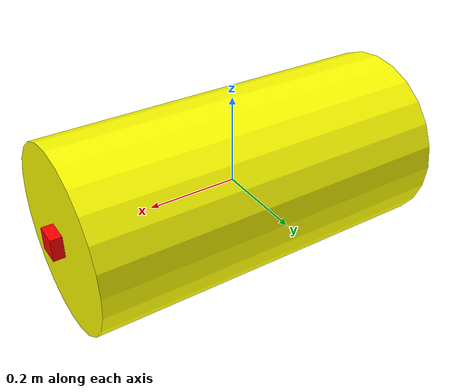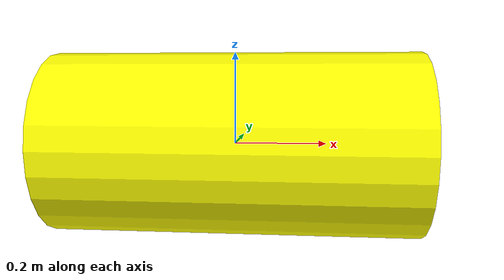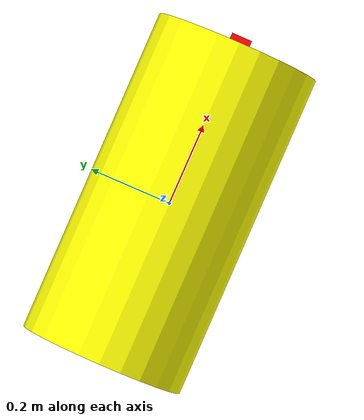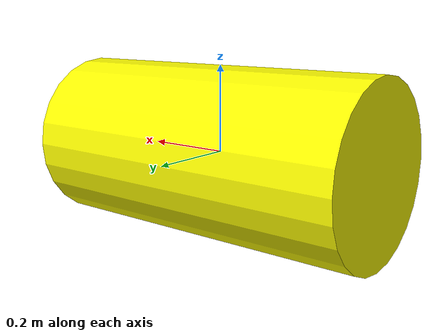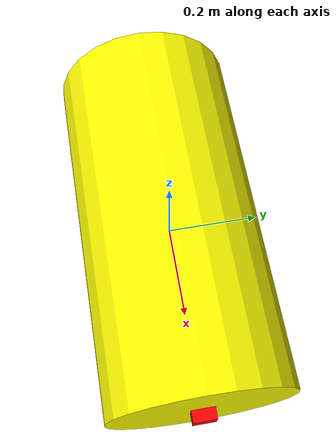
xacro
<?xml version="1.0"?>
<robot xmlns:xacro="http://www.ros.org/wiki/xacro" name="submarine">

    <xacro:include filename="$(find submarine_sim)/description/inertial.xacro"/>
    <xacro:include filename="$(find submarine_sim)/description/camera.xacro" />

    <xacro:property name="length" value="0.8" /> <xacro:property name="radius" value="0.2" /> <xacro:property name="mass" value="20" />

    <link name="base_link" />

    <link name="chassis">
        <visual>
            <geometry>
                <cylinder length="${length}" radius="${radius}" />
            </geometry>
            <origin rpy="0 1.5707 0" xyz="0 0 0"/>
            <material name="yellow">
                <color rgba="1 1 0 1"/>
            </material>
        </visual>

        <collision>
            <geometry>
                <cylinder length="${length}" radius="${radius}" />
            </geometry>
            <origin rpy="0 1.5707 0" xyz="0 0 0"/>
        </collision>

        <xacro:inertial mass="${mass}" x="${length}" y="${radius*2}" z="${radius*2}"/>
    </link>

    <joint name="base_link_chassis_joint" type="fixed">
        <parent link="base_link" />
        <child link="chassis" />
        <origin xyz="0 0 0" />
    </joint>

    <xacro:camera parent_link="chassis">
        <origin xyz="${length/2} 0 0" rpy="0 0 0"/>
    </xacro:camera>

    <gazebo>
        <plugin name="rov_controller" filename="librov_controller.so">
             <ros>
                <namespace>/rov</namespace>
             </ros>
        </plugin>
    </gazebo>

    <gazebo reference="chassis">
        <material>Gazebo/Yellow</material>
        <gravity>0</gravity>
    </gazebo>

</robot>

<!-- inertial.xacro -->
<robot xmlns:xacro="http://www.ros.org/wiki/xacro">

  <xacro:macro name="inertial" params="mass x y z">
    <inertial>
      <origin xyz="0 0 0" rpy="0 0 0"/>
      <mass value="${mass}" />
      <inertia
        ixx="${(1/12.0) * mass * (y*y + z*z)}" ixy="0.0" ixz="0.0"
        iyy="${(1/12.0) * mass * (x*x + z*z)}" iyz="0.0"
        izz="${(1/12.0) * mass * (x*x + y*y)}" />
    </inertial>
  </xacro:macro>

</robot>

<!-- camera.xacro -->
<robot xmlns:xacro="http://www.ros.org/wiki/xacro">

    <xacro:macro name="camera" params="parent_link *origin">

        <link name="camera_link">
            <visual>
                <geometry>
                    <box size="0.05 0.05 0.05" />
                </geometry>
                <material name="red">
                    <color rgba="1 0 0 1"/>
                </material>
            </visual>
            <collision>
                <geometry>
                    <box size="0.05 0.05 0.05" />
                </geometry>
            </collision>
            <inertial>
                <mass value="0.1" />
                <inertia ixx="0.0001" ixy="0" ixz="0" iyy="0.0001" iyz="0" izz="0.0001" />
            </inertial>
        </link>

        <joint name="camera_joint" type="fixed">
            <parent link="${parent_link}" />
            <child link="camera_link" />
            <xacro:insert_block name="origin" />
        </joint>

        <link name="camera_frame_link" />

        <joint name="camera_frame_joint" type="fixed">
            <parent link="camera_link" />
            <child link="camera_frame_link" />
            <origin xyz="0 0 0" rpy="${-pi/2} 0 ${-pi/2}" />
        </joint>

        <gazebo reference="camera_link">
            <sensor name="camera_sensor" type="camera">
                <pose>0 0 0 0 0 0</pose>
                <visualize>true</visualize>
                <update_rate>30</update_rate>
                <camera>
                    <horizontal_fov>1.089</horizontal_fov>
                    <image>
                        <format>R8G8B8</format>
                        <width>640</width>
                        <height>480</height>
                    </image>
                    <clip>
                        <near>0.01</near>
                        <far>50.0</far>
                    </clip>
                </camera>
                <plugin name="camera_controller" filename="libgazebo_ros_camera.so">
                    <frame_name>camera_frame_link</frame_name>
                </plugin>
            </sensor>
        </gazebo>

    </xacro:macro>

</robot>
